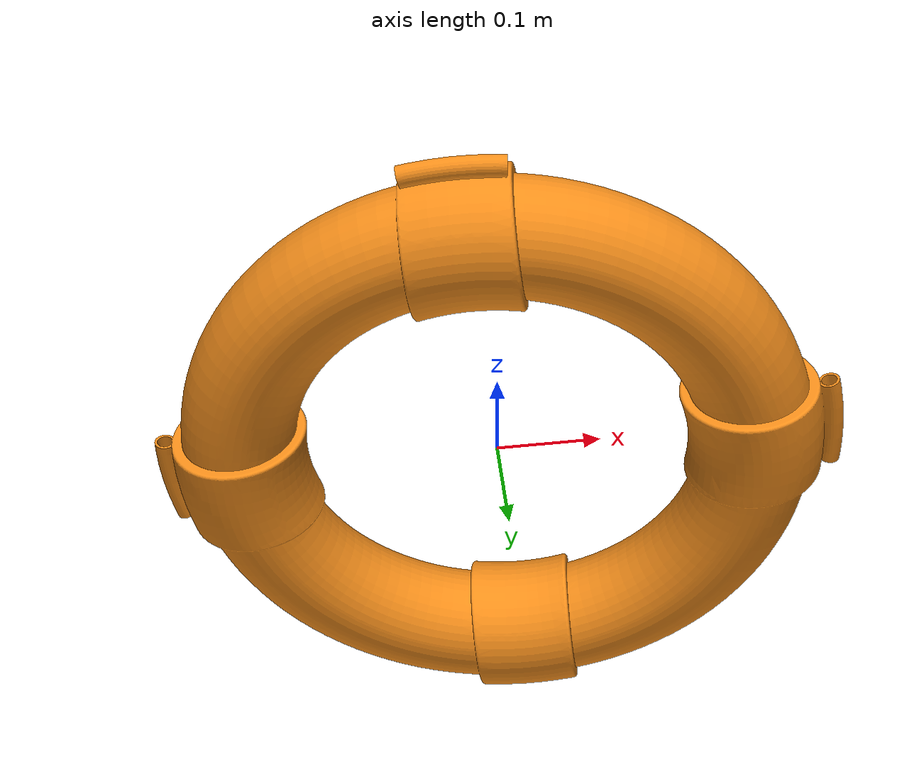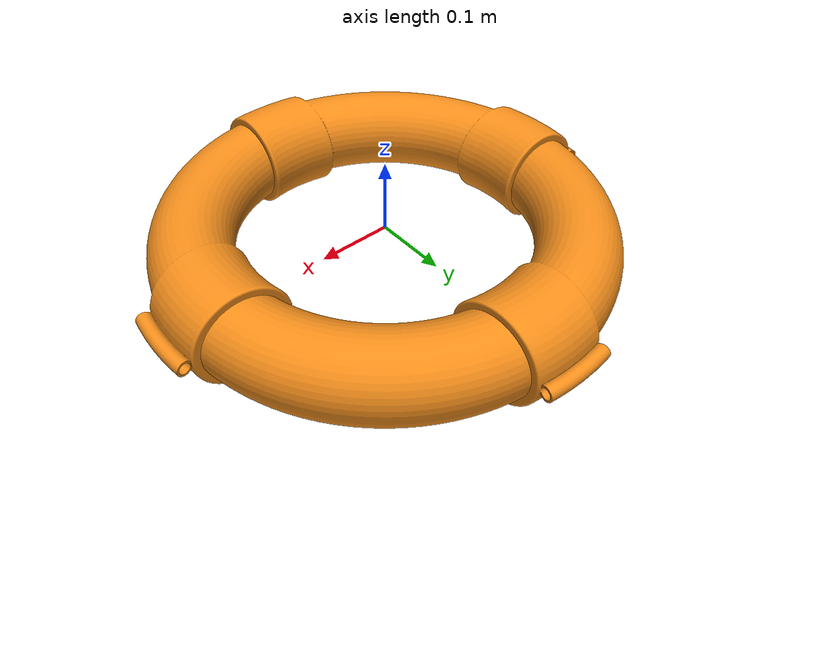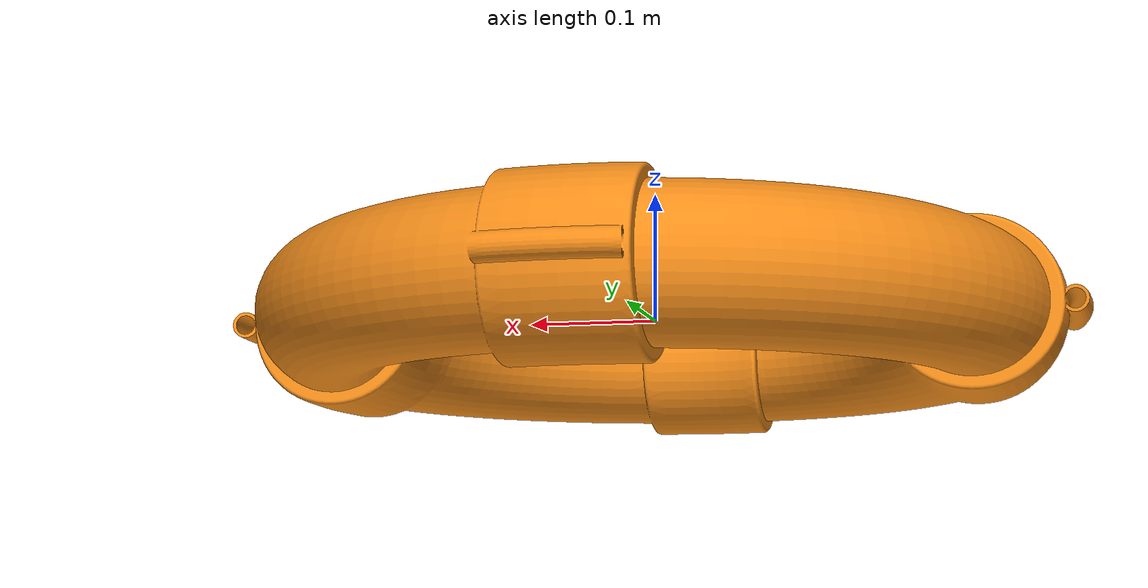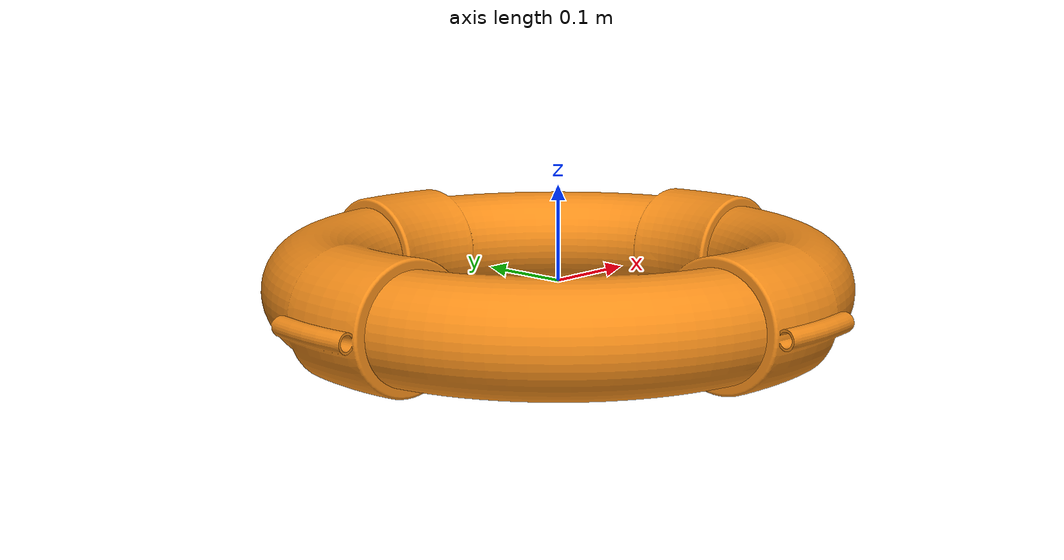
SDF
<?xml version='1.0' encoding='utf-8'?>
<sdf version="1.6">
  <model name="lifebuoy">
    <link name="body">
      <inertial>
        <mass>30.0</mass>
      </inertial>

      <visual name="visual">
        <geometry>
          <mesh>
            <uri>model://lifebuoy/meshes/lifebuoy_.stl</uri>
            <scale>0.01 0.01 0.01</scale>
          </mesh>
        </geometry>
        <material>
          <script>
            <name>material Gazebo/Orange</name>
            <uri>file://media/materials/scripts/gazebo.material</uri>
          </script>
        </material>
      </visual>

      <collision name="collision">
        <geometry>
          <mesh>
            <uri>model://lifebuoy/meshes/lifebuoy_.stl</uri>
            <scale>0.01 0.01 0.01</scale>
          </mesh>
        </geometry>
        <surface>
          <bounce>
            <restitution_coefficient>0</restitution_coefficient>
          </bounce>
        </surface>
      </collision>

    </link>
    <plugin name="lifebuoy" filename="liblifebuoy.so"/>
  </model>
</sdf>
